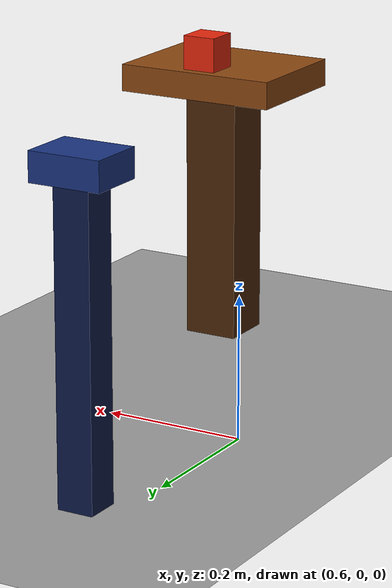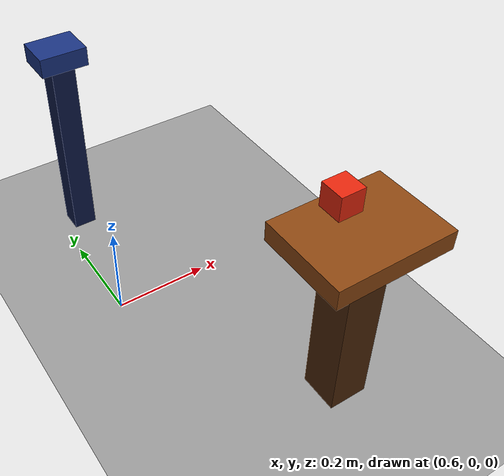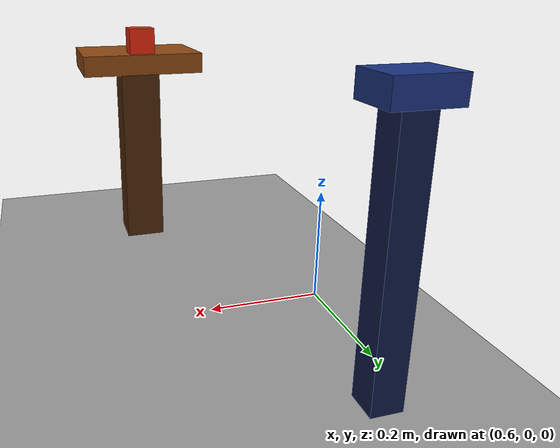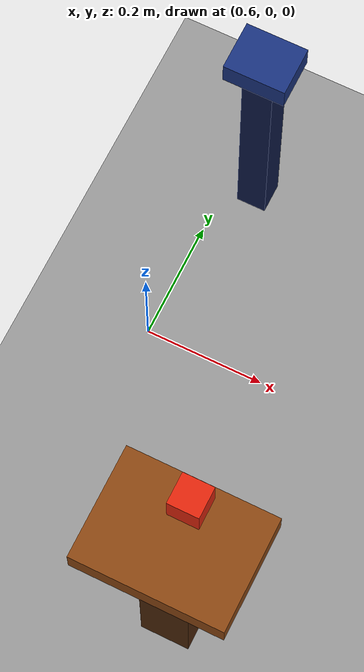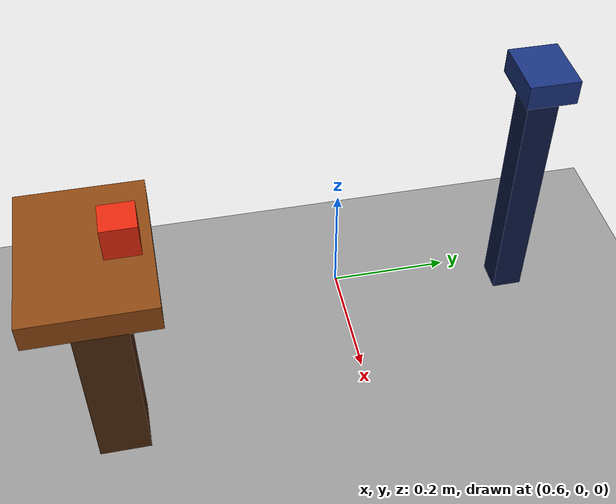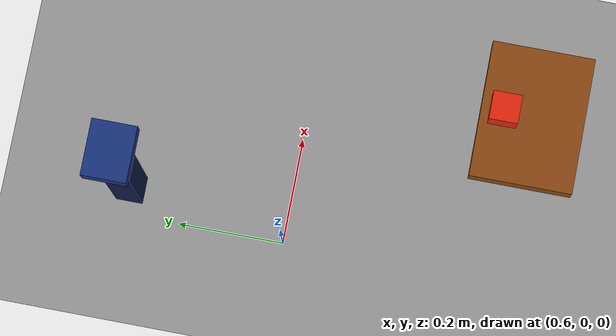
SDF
<?xml version="1.0" ?>
<sdf version="1.8">
  <world name="pick_place_world">
    <!-- Gravity aktif: gerçek fizik pick-and-place için gerekli -->
    <gravity>0 0 -9.81</gravity>
    <physics name="1ms" type="bullet">
      <max_step_size>0.001</max_step_size>
      <real_time_factor>1.0</real_time_factor>
      <real_time_update_rate>1000</real_time_update_rate>
    </physics>

    <plugin filename="gz-sim-physics-system" name="gz::sim::systems::Physics">
      <engine>
        <filename>gz-physics-bullet-featherstone-plugin</filename>
      </engine>
    </plugin>
    <plugin filename="gz-sim-user-commands-system" name="gz::sim::systems::UserCommands"/>
    <plugin filename="gz-sim-scene-broadcaster-system" name="gz::sim::systems::SceneBroadcaster"/>
    <plugin filename="gz-sim-contact-system" name="gz::sim::systems::Contact"/>

    <light type="directional" name="sun">
      <cast_shadows>true</cast_shadows>
      <pose>0 0 10 0 0 0</pose>
      <diffuse>0.9 0.9 0.9 1</diffuse>
      <specular>0.3 0.3 0.3 1</specular>
      <attenuation>
        <range>1000</range>
        <constant>0.9</constant>
        <linear>0.01</linear>
        <quadratic>0.001</quadratic>
      </attenuation>
      <direction>-0.5 0.1 -0.9</direction>
    </light>

    <!-- Zemin -->
    <model name="ground_plane">
      <static>true</static>
      <link name="link">
        <collision name="collision">
          <geometry>
            <plane>
              <normal>0 0 1</normal>
              <size>100 100</size>
            </plane>
          </geometry>
          <surface>
            <friction>
              <ode>
                <mu>1.0</mu>
                <mu2>1.0</mu2>
              </ode>
            </friction>
          </surface>
        </collision>
        <visual name="visual">
          <geometry>
            <plane>
              <normal>0 0 1</normal>
              <size>100 100</size>
            </plane>
          </geometry>
          <material>
            <ambient>0.6 0.6 0.6 1</ambient>
            <diffuse>0.6 0.6 0.6 1</diffuse>
            <specular>0.1 0.1 0.1 1</specular>
          </material>
        </visual>
      </link>
    </model>

    <model name="source_table">
      <pose>0 0 0 0 0 0</pose>
      <static>true</static>

      <!-- Masa yüzeyi (tabla) -->
      <link name="top">
        <pose>0.85 -0.40 0.39 0 0 0</pose>
        <collision name="collision">
          <geometry><box><size>0.24 0.18 0.04</size></box></geometry>
          <surface>
            <friction><ode><mu>0.8</mu><mu2>0.8</mu2></ode></friction>
          </surface>
        </collision>
        <visual name="visual">
          <geometry><box><size>0.24 0.18 0.04</size></box></geometry>
          <material>
            <ambient>0.55 0.28 0.07 1</ambient>
            <diffuse>0.55 0.28 0.07 1</diffuse>
            <specular>0.1 0.06 0.01 1</specular>
          </material>
        </visual>
        <sensor name="source_table_contact" type="contact">
          <always_on>true</always_on>
          <update_rate>100</update_rate>
          <topic>/source_table/contacts</topic>
          <contact><collision>collision</collision></contact>
        </sensor>
      </link>

      <!-- Masa ayağı -->
      <link name="leg">
        <pose>0.85 -0.40 0.185 0 0 0</pose>
        <collision name="collision">
          <geometry><box><size>0.08 0.08 0.37</size></box></geometry>
        </collision>
        <visual name="visual">
          <geometry><box><size>0.08 0.08 0.37</size></box></geometry>
          <material>
            <ambient>0.30 0.15 0.04 1</ambient>
            <diffuse>0.30 0.15 0.04 1</diffuse>
          </material>
        </visual>
      </link>

      <joint name="top_to_leg" type="fixed">
        <parent>top</parent>
        <child>leg</child>
      </joint>
    </model>

    <model name="target_table">
      <pose>0 0 0 0 0 0</pose>
      <static>true</static>

      <!-- Masa yüzeyi -->
      <link name="top">
        <pose>0.65 0.30 0.44 0 0 0</pose>
        <collision name="collision">
          <geometry><box><size>0.10 0.08 0.04</size></box></geometry>
          <surface>
            <friction><ode><mu>0.8</mu><mu2>0.8</mu2></ode></friction>
          </surface>
        </collision>
        <visual name="visual">
          <geometry><box><size>0.10 0.08 0.04</size></box></geometry>
          <material>
            <ambient>0.10 0.20 0.50 1</ambient>
            <diffuse>0.10 0.20 0.50 1</diffuse>
            <specular>0.05 0.10 0.25 1</specular>
          </material>
        </visual>
        <sensor name="target_table_contact" type="contact">
          <always_on>true</always_on>
          <update_rate>100</update_rate>
          <topic>/target_table/contacts</topic>
          <contact><collision>collision</collision></contact>
        </sensor>
      </link>

      <!-- Masa ayağı -->
      <link name="leg">
        <pose>0.65 0.30 0.21 0 0 0</pose>
        <collision name="collision">
          <geometry><box><size>0.05 0.05 0.42</size></box></geometry>
        </collision>
        <visual name="visual">
          <geometry><box><size>0.05 0.05 0.42</size></box></geometry>
          <material>
            <ambient>0.05 0.10 0.28 1</ambient>
            <diffuse>0.05 0.10 0.28 1</diffuse>
          </material>
        </visual>
      </link>

      <joint name="top_to_leg" type="fixed">
        <parent>top</parent>
        <child>leg</child>
      </joint>
    </model>

    <!-- ===== KAVRANACAK KÜP =====
         Kaynak masa yüzeyi: z=0.41 m. Küp boyutu: 5 cm.
         Küp merkezi: z = 0.41 + 0.025 = 0.435 m -->
    <model name="red_cube">
      <static>false</static>
      <pose>0.85 -0.35 0.435 0 0 0</pose>
      <link name="link">
        <inertial>
          <mass>0.03</mass>
          <inertia>
            <ixx>0.0000417</ixx><iyy>0.0000417</iyy><izz>0.0000417</izz>
            <ixy>0</ixy><iyz>0</iyz><ixz>0</ixz>
          </inertia>
        </inertial>
        <collision name="collision">
          <geometry><box><size>0.05 0.05 0.05</size></box></geometry>
          <surface>
            <friction>
              <ode><mu>2.0</mu><mu2>2.0</mu2></ode>
            </friction>
            <contact>
              <ode>
                <kp>1e6</kp>
                <kd>1e2</kd>
              </ode>
            </contact>
          </surface>
        </collision>
        <visual name="visual">
          <geometry><box><size>0.05 0.05 0.05</size></box></geometry>
          <material>
            <ambient>0.9 0.15 0.05 1</ambient>
            <diffuse>0.9 0.15 0.05 1</diffuse>
            <specular>0.3 0.05 0.01 1</specular>
          </material>
        </visual>
      </link>
      <!-- Bu modelin canonical link pozunu ayrı ve adlandırılmış bir topic'te
           yayınla; terminal fiziksel kavrama/lift doğrulamasını bu veriden
           yapar. -->
      <plugin filename="gz-sim-odometry-publisher-system"
              name="gz::sim::systems::OdometryPublisher">
        <dimensions>3</dimensions>
        <odom_frame>world</odom_frame>
        <robot_base_frame>red_cube</robot_base_frame>
        <odom_topic>/red_cube/odometry</odom_topic>
        <odom_publish_frequency>100</odom_publish_frequency>
      </plugin>
    </model>

  </world>
</sdf>
